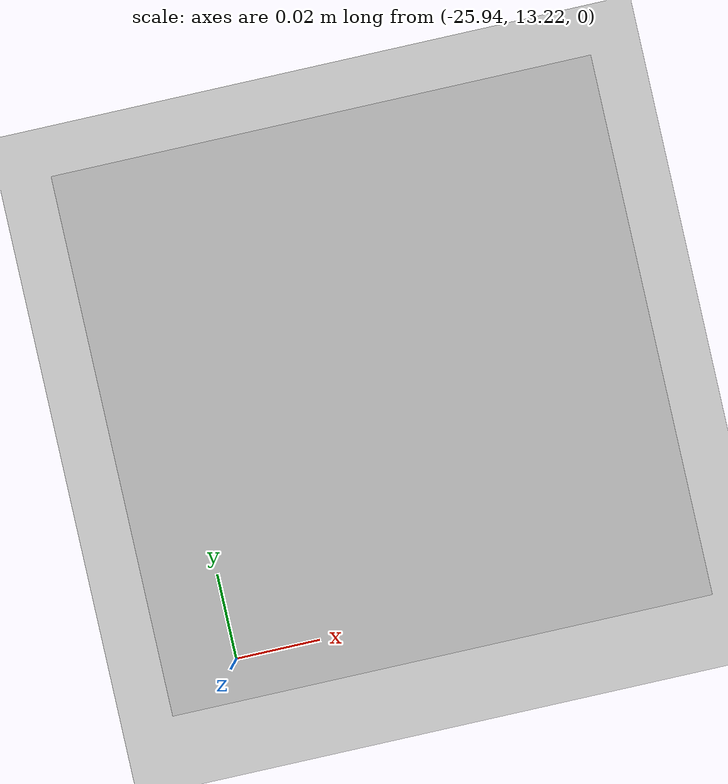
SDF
<sdf version="1.7">
 <world name="default">
  <model name="ground_plane">
   <static>1</static>
   <link name="link">
    <collision name="collision">
     <geometry><plane><normal>0 0 1</normal><size>100 100</size></plane></geometry>
     <surface><friction><ode><mu>100</mu><mu2>50</mu2></ode></friction></surface>
    </collision>
    <visual name="visual">
     <cast_shadows>0</cast_shadows>
     <geometry><plane><normal>0 0 1</normal><size>100 100</size></plane></geometry>
     <material>
      <script><uri>file://media/materials/scripts/gazebo.material</uri><name>Gazebo/Grey</name></script>
     </material>
    </visual>
   </link>
  </model>
  <model name="camera">
   <pose>-25.893 13.2743 0.06 0 0 -1e-06</pose>
   <link name="link">
    <inertial>
     <mass>0.1</mass>
     <inertia>
      <ixx>0.000166667</ixx>
      <iyy>0.000166667</iyy>
      <izz>0.000166667</izz>
      <ixy>0</ixy>
      <ixz>0</ixz>
      <iyz>0</iyz>
     </inertia>
    </inertial>
    <collision name="collision"><geometry><box><size>0.1 0.1 0.1</size></box></geometry></collision>
    <visual name="visual"><geometry><box><size>0.1 0.1 0.1</size></box></geometry></visual>
    <sensor name="camera" type="camera">
     <camera>
      <horizontal_fov>1.047</horizontal_fov>
      <image><width>320</width><height>240</height></image>
      <clip><near>0.1</near><far>100</far></clip>
     </camera>
     <always_on>1</always_on>
     <update_rate>30</update_rate>
     <visualize>1</visualize>
    </sensor>
   </link>
  </model>
 </world>
</sdf>
